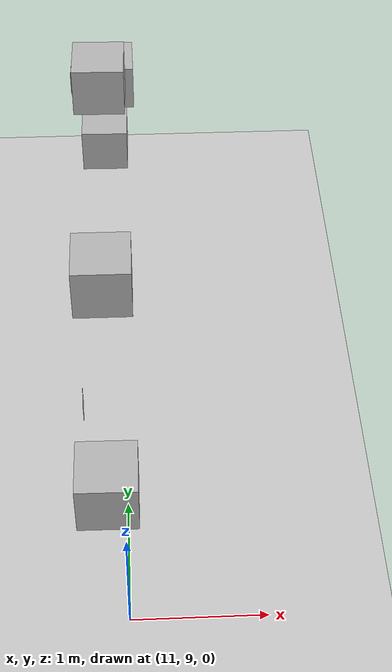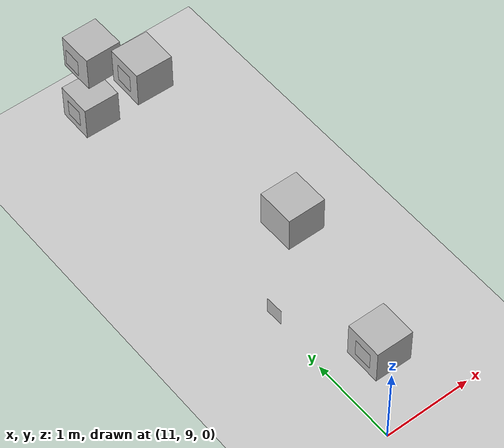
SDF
<sdf version="1.6">
 <world name="default">
  <model name="ground_plane">
   <static>1</static>
   <link name="link">
    <collision name="collision">
     <geometry><plane><normal>0 0 1</normal><size>300 300</size></plane></geometry>
     <surface>
      <contact><collide_bitmask>65535</collide_bitmask></contact>
      <friction><ode><mu>100</mu><mu2>50</mu2></ode></friction>
     </surface>
    </collision>
    <visual name="visual">
     <geometry><plane><normal>0 0 1</normal><size>100 100</size></plane></geometry>
     <material>
      <script><uri>file://media/materials/scripts/gazebo.material</uri><name>Gazebo/Grey</name></script>
     </material>
    </visual>
   </link>
  </model>
  <model name="CuboQR15">
   <link name="link">
    <pose>-0.025497 0.863791 0.912898 0 -0 0.011646</pose>
    <inertial>
     <mass>0.39</mass>
     <inertia><ixx>0.00058</ixx><ixy>0</ixy><ixz>0</ixz><iyy>0.00058</iyy><iyz>0</iyz><izz>0.00019</izz></inertia>
    </inertial>
    <visual name="visual">
     <geometry><box><size>0.4 0.4 0.4</size></box></geometry>
     <material>
      <script>
       <uri>model://Caja/materials/scripts</uri>
       <uri>model://Caja/materials/textures</uri>
       <name>Caja/Diffuse</name>
      </script>
      <shader type="pixel"/>
     </material>
    </visual>
    <collision name="collision">
     <geometry><box><size>0.4 0.4 0.4</size></box></geometry>
     <surface>
      <friction>
       <ode><mu>1</mu><mu2>1</mu2><fdir1>0 0 0</fdir1><slip1>0</slip1><slip2>0</slip2></ode>
       <torsional>
        <coefficient>1</coefficient>
        <patch_radius>0</patch_radius>
        <surface_radius>0</surface_radius>
        <use_patch_radius>1</use_patch_radius>
        <ode><slip>0</slip></ode>
       </torsional>
      </friction>
      <bounce><restitution_coefficient>0</restitution_coefficient><threshold>1e+06</threshold></bounce>
      <contact>
       <collide_without_contact>0</collide_without_contact>
       <collide_without_contact_bitmask>1</collide_without_contact_bitmask>
       <collide_bitmask>1</collide_bitmask>
       <ode>
        <soft_cfm>0</soft_cfm>
        <soft_erp>0.2</soft_erp>
        <kp>1e+13</kp>
        <kd>1</kd>
        <max_vel>0.01</max_vel>
        <min_depth>0</min_depth>
       </ode>
       <bullet>
        <split_impulse>1</split_impulse>
        <split_impulse_penetration_threshold>-0.01</split_impulse_penetration_threshold>
        <soft_cfm>0</soft_cfm>
        <soft_erp>0.2</soft_erp>
        <kp>1e+13</kp>
        <kd>1</kd>
       </bullet>
      </contact>
     </surface>
    </collision>
   </link>
   <static>0</static>
   <pose>10.8604 12.5829 -0.061965 -1e-06 -2e-06 -0.026227</pose>
  </model>
  <model name="CuboQR14">
   <link name="link">
    <pose>0.003906 0.820536 1.59475 0.003858 -0 0.037736</pose>
    <inertial>
     <mass>0.39</mass>
     <inertia><ixx>0.00058</ixx><ixy>0</ixy><ixz>0</ixz><iyy>0.00058</iyy><iyz>0</iyz><izz>0.00019</izz></inertia>
    </inertial>
    <visual name="visual">
     <geometry><box><size>0.4 0.4 0.4</size></box></geometry>
     <material>
      <script>
       <uri>model://Caja/materials/scripts</uri>
       <uri>model://Caja/materials/textures</uri>
       <name>Caja/Diffuse</name>
      </script>
      <shader type="pixel"/>
     </material>
    </visual>
    <collision name="collision">
     <geometry><box><size>0.4 0.4 0.4</size></box></geometry>
     <surface>
      <friction>
       <ode><mu>1</mu><mu2>1</mu2><fdir1>0 0 0</fdir1><slip1>0</slip1><slip2>0</slip2></ode>
       <torsional>
        <coefficient>1</coefficient>
        <patch_radius>0</patch_radius>
        <surface_radius>0</surface_radius>
        <use_patch_radius>1</use_patch_radius>
        <ode><slip>0</slip></ode>
       </torsional>
      </friction>
      <bounce><restitution_coefficient>0</restitution_coefficient><threshold>1e+06</threshold></bounce>
      <contact>
       <collide_without_contact>0</collide_without_contact>
       <collide_without_contact_bitmask>1</collide_without_contact_bitmask>
       <collide_bitmask>1</collide_bitmask>
       <ode>
        <soft_cfm>0</soft_cfm>
        <soft_erp>0.2</soft_erp>
        <kp>1e+13</kp>
        <kd>1</kd>
        <max_vel>0.01</max_vel>
        <min_depth>0</min_depth>
       </ode>
       <bullet>
        <split_impulse>1</split_impulse>
        <split_impulse_penetration_threshold>-0.01</split_impulse_penetration_threshold>
        <soft_cfm>0</soft_cfm>
        <soft_erp>0.2</soft_erp>
        <kp>1e+13</kp>
        <kd>1</kd>
       </bullet>
      </contact>
     </surface>
    </collision>
   </link>
   <static>0</static>
   <pose>10.8974 12.6254 -0.05319 -0.003856 -0.000141 -0.030736</pose>
  </model>
  <model name="CuboQR17">
   <link name="link">
    <pose>1.43982 2.03477 0.035682 1e-06 0.134249 0</pose>
    <inertial>
     <mass>0.39</mass>
     <inertia><ixx>0.00058</ixx><ixy>0</ixy><ixz>0</ixz><iyy>0.00058</iyy><iyz>0</iyz><izz>0.00019</izz></inertia>
    </inertial>
    <visual name="visual">
     <geometry><box><size>0.4 0.4 0.4</size></box></geometry>
     <material>
      <script>
       <uri>model://Caja/materials/scripts</uri>
       <uri>model://Caja/materials/textures</uri>
       <name>Caja/Diffuse</name>
      </script>
      <shader type="pixel"/>
     </material>
    </visual>
    <collision name="collision">
     <geometry><box><size>0.4 0.4 0.4</size></box></geometry>
     <surface>
      <friction>
       <ode><mu>1</mu><mu2>1</mu2><fdir1>0 0 0</fdir1><slip1>0</slip1><slip2>0</slip2></ode>
       <torsional>
        <coefficient>1</coefficient>
        <patch_radius>0</patch_radius>
        <surface_radius>0</surface_radius>
        <use_patch_radius>1</use_patch_radius>
        <ode><slip>0</slip></ode>
       </torsional>
      </friction>
      <bounce><restitution_coefficient>0</restitution_coefficient><threshold>1e+06</threshold></bounce>
      <contact>
       <collide_without_contact>0</collide_without_contact>
       <collide_without_contact_bitmask>1</collide_without_contact_bitmask>
       <collide_bitmask>1</collide_bitmask>
       <ode>
        <soft_cfm>0</soft_cfm>
        <soft_erp>0.2</soft_erp>
        <kp>1e+13</kp>
        <kd>1</kd>
        <max_vel>0.01</max_vel>
        <min_depth>0</min_depth>
       </ode>
       <bullet>
        <split_impulse>1</split_impulse>
        <split_impulse_penetration_threshold>-0.01</split_impulse_penetration_threshold>
        <soft_cfm>0</soft_cfm>
        <soft_erp>0.2</soft_erp>
        <kp>1e+13</kp>
        <kd>1</kd>
       </bullet>
      </contact>
     </surface>
    </collision>
   </link>
   <static>0</static>
   <pose>11.1141 13.9089 0.169288 1.5708 -1.9e-05 -1.72306</pose>
  </model>
  <model name="Plano15">
   <link name="link">
    <gravity>0</gravity>
    <pose>0.092941 -0.00902 1.95167 0 -0 0</pose>
    <inertial>
     <mass>1e-06</mass>
     <inertia><ixx>0.00058</ixx><ixy>0</ixy><ixz>0</ixz><iyy>0.00058</iyy><iyz>0</iyz><izz>0.00019</izz></inertia>
    </inertial>
    <visual name="visual">
     <geometry><box><size>0.2 1e-06 0.2</size></box></geometry>
     <material>
      <script>
       <uri>model://Plano15/materials/scripts</uri>
       <uri>model://Plano15/materials/textures</uri>
       <name>Plano15/Diffuse</name>
      </script>
      <shader type="pixel"/>
     </material>
     <cast_shadows>0</cast_shadows>
    </visual>
    <collision name="collision">
     <geometry><box><size>0.2 1e-06 0.2</size></box></geometry>
     <surface>
      <friction>
       <ode><mu>1</mu><mu2>1</mu2><fdir1>0 0 0</fdir1><slip1>0</slip1><slip2>0</slip2></ode>
       <torsional>
        <coefficient>1</coefficient>
        <patch_radius>0</patch_radius>
        <surface_radius>0</surface_radius>
        <use_patch_radius>1</use_patch_radius>
        <ode><slip>0</slip></ode>
       </torsional>
      </friction>
      <bounce><restitution_coefficient>0</restitution_coefficient><threshold>1e+06</threshold></bounce>
      <contact>
       <collide_without_contact>0</collide_without_contact>
       <collide_without_contact_bitmask>1</collide_without_contact_bitmask>
       <collide_bitmask>1</collide_bitmask>
       <ode>
        <soft_cfm>0</soft_cfm>
        <soft_erp>0.2</soft_erp>
        <kp>1e+13</kp>
        <kd>1</kd>
        <max_vel>0.01</max_vel>
        <min_depth>0</min_depth>
       </ode>
       <bullet>
        <split_impulse>1</split_impulse>
        <split_impulse_penetration_threshold>-0.01</split_impulse_penetration_threshold>
        <soft_cfm>0</soft_cfm>
        <soft_erp>0.2</soft_erp>
        <kp>1e+13</kp>
        <kd>1</kd>
       </bullet>
      </contact>
     </surface>
    </collision>
   </link>
   <static>0</static>
   <pose>10.6606 12.5838 0.25794 0 0 -1.60068</pose>
  </model>
  <model name="Plano17">
   <link name="link">
    <gravity>0</gravity>
    <pose>0.529394 0.033885 0.692928 -0 0.041367 0.025601</pose>
    <inertial>
     <mass>1e-06</mass>
     <inertia><ixx>0.00058</ixx><ixy>0</ixy><ixz>0</ixz><iyy>0.00058</iyy><iyz>0</iyz><izz>0.00019</izz></inertia>
    </inertial>
    <visual name="visual">
     <geometry><box><size>0.2 1e-06 0.2</size></box></geometry>
     <material>
      <script>
       <uri>model://Plano17/materials/scripts</uri>
       <uri>model://Plano17/materials/textures</uri>
       <name>Plano17/Diffuse</name>
      </script>
      <shader type="pixel"/>
     </material>
     <cast_shadows>0</cast_shadows>
    </visual>
    <collision name="collision">
     <geometry><box><size>0.2 1e-06 0.2</size></box></geometry>
     <surface>
      <friction>
       <ode><mu>1</mu><mu2>1</mu2><fdir1>0 0 0</fdir1><slip1>0</slip1><slip2>0</slip2></ode>
       <torsional>
        <coefficient>1</coefficient>
        <patch_radius>0</patch_radius>
        <surface_radius>0</surface_radius>
        <use_patch_radius>1</use_patch_radius>
        <ode><slip>0</slip></ode>
       </torsional>
      </friction>
      <bounce><restitution_coefficient>0</restitution_coefficient><threshold>1e+06</threshold></bounce>
      <contact>
       <collide_without_contact>0</collide_without_contact>
       <collide_without_contact_bitmask>1</collide_without_contact_bitmask>
       <collide_bitmask>1</collide_bitmask>
       <ode>
        <soft_cfm>0</soft_cfm>
        <soft_erp>0.2</soft_erp>
        <kp>1e+13</kp>
        <kd>1</kd>
        <max_vel>0.01</max_vel>
        <min_depth>0</min_depth>
       </ode>
       <bullet>
        <split_impulse>1</split_impulse>
        <split_impulse_penetration_threshold>-0.01</split_impulse_penetration_threshold>
        <soft_cfm>0</soft_cfm>
        <soft_erp>0.2</soft_erp>
        <kp>1e+13</kp>
        <kd>1</kd>
       </bullet>
      </contact>
     </surface>
    </collision>
   </link>
   <static>0</static>
   <pose>10.6508 13.9613 0.903512 0 0 -1.5876</pose>
  </model>
  <model name="Plano14">
   <link name="link">
    <gravity>0</gravity>
    <pose>-0.817096 -0.102693 -0.058439 0.003356 0.001825 0.044055</pose>
    <inertial>
     <mass>1e-06</mass>
     <inertia><ixx>0.00058</ixx><ixy>0</ixy><ixz>0</ixz><iyy>0.00058</iyy><iyz>0</iyz><izz>0.00019</izz></inertia>
    </inertial>
    <visual name="visual">
     <geometry><box><size>0.2 1e-06 0.2</size></box></geometry>
     <material>
      <script>
       <uri>model://Plano14/materials/scripts</uri>
       <uri>model://Plano14/materials/textures</uri>
       <name>Plano14/Diffuse</name>
      </script>
      <shader type="pixel"/>
     </material>
     <cast_shadows>0</cast_shadows>
    </visual>
    <collision name="collision">
     <geometry><box><size>0.2 1e-06 0.2</size></box></geometry>
     <surface>
      <friction>
       <ode><mu>1</mu><mu2>1</mu2><fdir1>0 0 0</fdir1><slip1>0</slip1><slip2>0</slip2></ode>
       <torsional>
        <coefficient>1</coefficient>
        <patch_radius>0</patch_radius>
        <surface_radius>0</surface_radius>
        <use_patch_radius>1</use_patch_radius>
        <ode><slip>0</slip></ode>
       </torsional>
      </friction>
      <bounce><restitution_coefficient>0</restitution_coefficient><threshold>1e+06</threshold></bounce>
      <contact>
       <collide_without_contact>0</collide_without_contact>
       <collide_without_contact_bitmask>1</collide_without_contact_bitmask>
       <collide_bitmask>1</collide_bitmask>
       <ode>
        <soft_cfm>0</soft_cfm>
        <soft_erp>0.2</soft_erp>
        <kp>1e+13</kp>
        <kd>1</kd>
        <max_vel>0.01</max_vel>
        <min_depth>0</min_depth>
       </ode>
       <bullet>
        <split_impulse>1</split_impulse>
        <split_impulse_penetration_threshold>-0.01</split_impulse_penetration_threshold>
        <soft_cfm>0</soft_cfm>
        <soft_erp>0.2</soft_erp>
        <kp>1e+13</kp>
        <kd>1</kd>
       </bullet>
      </contact>
     </surface>
    </collision>
   </link>
   <static>0</static>
   <pose>10.7078 12.6284 0.90675 0 0 -1.62851</pose>
  </model>
  <model name="CuboQR27">
   <link name="link">
    <pose>-0.033779 -0.485928 2.26127 0.003116 -0 0</pose>
    <inertial>
     <mass>0.39</mass>
     <inertia><ixx>0.00058</ixx><ixy>0</ixy><ixz>0</ixz><iyy>0.00058</iyy><iyz>0</iyz><izz>0.00019</izz></inertia>
    </inertial>
    <visual name="visual">
     <geometry><box><size>0.4 0.4 0.4</size></box></geometry>
     <material>
      <script>
       <uri>model://Caja/materials/scripts</uri>
       <uri>model://Caja/materials/textures</uri>
       <name>Caja/Diffuse</name>
      </script>
      <shader type="pixel"/>
     </material>
    </visual>
    <collision name="collision">
     <geometry><box><size>0.4 0.4 0.4</size></box></geometry>
     <surface>
      <friction>
       <ode><mu>1</mu><mu2>1</mu2><fdir1>0 0 0</fdir1><slip1>0</slip1><slip2>0</slip2></ode>
       <torsional>
        <coefficient>1</coefficient>
        <patch_radius>0</patch_radius>
        <surface_radius>0</surface_radius>
        <use_patch_radius>1</use_patch_radius>
        <ode><slip>0</slip></ode>
       </torsional>
      </friction>
      <bounce><restitution_coefficient>0</restitution_coefficient><threshold>1e+06</threshold></bounce>
      <contact>
       <collide_without_contact>0</collide_without_contact>
       <collide_without_contact_bitmask>1</collide_without_contact_bitmask>
       <collide_bitmask>1</collide_bitmask>
       <ode>
        <soft_cfm>0</soft_cfm>
        <soft_erp>0.2</soft_erp>
        <kp>1e+13</kp>
        <kd>1</kd>
        <max_vel>0.01</max_vel>
        <min_depth>0</min_depth>
       </ode>
       <bullet>
        <split_impulse>1</split_impulse>
        <split_impulse_penetration_threshold>-0.01</split_impulse_penetration_threshold>
        <soft_cfm>0</soft_cfm>
        <soft_erp>0.2</soft_erp>
        <kp>1e+13</kp>
        <kd>1</kd>
       </bullet>
      </contact>
     </surface>
    </collision>
   </link>
   <static>0</static>
   <pose>10.9213 10.7795 -0.058693 -0.003145 -1.2e-05 -0.002406</pose>
  </model>
  <model name="CuboQR12">
   <link name="link">
    <pose>-0.003583 -0.22358 1.64428 -0.706369 -0 0.028238</pose>
    <inertial>
     <mass>0.39</mass>
     <inertia><ixx>0.00058</ixx><ixy>0</ixy><ixz>0</ixz><iyy>0.00058</iyy><iyz>0</iyz><izz>0.00019</izz></inertia>
    </inertial>
    <visual name="visual">
     <geometry><box><size>0.4 0.4 0.4</size></box></geometry>
     <material>
      <script>
       <uri>model://Caja/materials/scripts</uri>
       <uri>model://Caja/materials/textures</uri>
       <name>Caja/Diffuse</name>
      </script>
      <shader type="pixel"/>
     </material>
    </visual>
    <collision name="collision">
     <geometry><box><size>0.4 0.4 0.4</size></box></geometry>
     <surface>
      <friction>
       <ode><mu>1</mu><mu2>1</mu2><fdir1>0 0 0</fdir1><slip1>0</slip1><slip2>0</slip2></ode>
       <torsional>
        <coefficient>1</coefficient>
        <patch_radius>0</patch_radius>
        <surface_radius>0</surface_radius>
        <use_patch_radius>1</use_patch_radius>
        <ode><slip>0</slip></ode>
       </torsional>
      </friction>
      <bounce><restitution_coefficient>0</restitution_coefficient><threshold>1e+06</threshold></bounce>
      <contact>
       <collide_without_contact>0</collide_without_contact>
       <collide_without_contact_bitmask>1</collide_without_contact_bitmask>
       <collide_bitmask>1</collide_bitmask>
       <ode>
        <soft_cfm>0</soft_cfm>
        <soft_erp>0.2</soft_erp>
        <kp>1e+13</kp>
        <kd>1</kd>
        <max_vel>0.01</max_vel>
        <min_depth>0</min_depth>
       </ode>
       <bullet>
        <split_impulse>1</split_impulse>
        <split_impulse_penetration_threshold>-0.01</split_impulse_penetration_threshold>
        <soft_cfm>0</soft_cfm>
        <soft_erp>0.2</soft_erp>
        <kp>1e+13</kp>
        <kd>1</kd>
       </bullet>
      </contact>
     </surface>
    </collision>
   </link>
   <static>0</static>
   <pose>10.9128 10.3142 0.432509 0.706154 0.018326 -0.028475</pose>
  </model>
  <model name="Plano29">
   <link name="link">
    <gravity>0</gravity>
    <pose>1.04341 -0.05608 -0.017058 0 -0 0</pose>
    <inertial>
     <mass>1e-06</mass>
     <inertia><ixx>0.00058</ixx><ixy>0</ixy><ixz>0</ixz><iyy>0.00058</iyy><iyz>0</iyz><izz>0.00019</izz></inertia>
    </inertial>
    <visual name="visual">
     <geometry><box><size>0.2 1e-06 0.2</size></box></geometry>
     <material>
      <script>
       <uri>model://Plano29/materials/scripts</uri>
       <uri>model://Plano29/materials/textures</uri>
       <name>Plano29/Diffuse</name>
      </script>
      <shader type="pixel"/>
     </material>
     <cast_shadows>0</cast_shadows>
    </visual>
    <collision name="collision">
     <geometry><box><size>0.2 1e-06 0.2</size></box></geometry>
     <surface>
      <friction>
       <ode><mu>1</mu><mu2>1</mu2><fdir1>0 0 0</fdir1><slip1>0</slip1><slip2>0</slip2></ode>
       <torsional>
        <coefficient>1</coefficient>
        <patch_radius>0</patch_radius>
        <surface_radius>0</surface_radius>
        <use_patch_radius>1</use_patch_radius>
        <ode><slip>0</slip></ode>
       </torsional>
      </friction>
      <bounce><restitution_coefficient>0</restitution_coefficient><threshold>1e+06</threshold></bounce>
      <contact>
       <collide_without_contact>0</collide_without_contact>
       <collide_without_contact_bitmask>1</collide_without_contact_bitmask>
       <collide_bitmask>1</collide_bitmask>
       <ode>
        <soft_cfm>0</soft_cfm>
        <soft_erp>0.2</soft_erp>
        <kp>1e+13</kp>
        <kd>1</kd>
        <max_vel>0.01</max_vel>
        <min_depth>0</min_depth>
       </ode>
       <bullet>
        <split_impulse>1</split_impulse>
        <split_impulse_penetration_threshold>-0.01</split_impulse_penetration_threshold>
        <soft_cfm>0</soft_cfm>
        <soft_erp>0.2</soft_erp>
        <kp>1e+13</kp>
        <kd>1</kd>
       </bullet>
      </contact>
     </surface>
    </collision>
   </link>
   <static>0</static>
   <pose>10.7522 10.1107 1.5598 0 0 -1.57894</pose>
  </model>
  <model name="Plano27">
   <link name="link">
    <gravity>0</gravity>
    <pose>0.469171 -0.023188 -0.057385 0 -0 0.032924</pose>
    <inertial>
     <mass>1e-06</mass>
     <inertia><ixx>0.00058</ixx><ixy>0</ixy><ixz>0</ixz><iyy>0.00058</iyy><iyz>0</iyz><izz>0.00019</izz></inertia>
    </inertial>
    <visual name="visual">
     <geometry><box><size>0.2 1e-06 0.2</size></box></geometry>
     <material>
      <script>
       <uri>model://Plano27/materials/scripts</uri>
       <uri>model://Plano27/materials/textures</uri>
       <name>Plano27/Diffuse</name>
      </script>
      <shader type="pixel"/>
     </material>
     <cast_shadows>0</cast_shadows>
    </visual>
    <collision name="collision">
     <geometry><box><size>0.2 1e-06 0.2</size></box></geometry>
     <surface>
      <friction>
       <ode><mu>1</mu><mu2>1</mu2><fdir1>0 0 0</fdir1><slip1>0</slip1><slip2>0</slip2></ode>
       <torsional>
        <coefficient>1</coefficient>
        <patch_radius>0</patch_radius>
        <surface_radius>0</surface_radius>
        <use_patch_radius>1</use_patch_radius>
        <ode><slip>0</slip></ode>
       </torsional>
      </friction>
      <bounce><restitution_coefficient>0</restitution_coefficient><threshold>1e+06</threshold></bounce>
      <contact>
       <collide_without_contact>0</collide_without_contact>
       <collide_without_contact_bitmask>1</collide_without_contact_bitmask>
       <collide_bitmask>1</collide_bitmask>
       <ode>
        <soft_cfm>0</soft_cfm>
        <soft_erp>0.2</soft_erp>
        <kp>1e+13</kp>
        <kd>1</kd>
        <max_vel>0.01</max_vel>
        <min_depth>0</min_depth>
       </ode>
       <bullet>
        <split_impulse>1</split_impulse>
        <split_impulse_penetration_threshold>-0.01</split_impulse_penetration_threshold>
        <soft_cfm>0</soft_cfm>
        <soft_erp>0.2</soft_erp>
        <kp>1e+13</kp>
        <kd>1</kd>
       </bullet>
      </contact>
     </surface>
    </collision>
   </link>
   <static>0</static>
   <pose>10.7156 10.7789 0.90002 0 0 -1.57306</pose>
  </model>
 </world>
</sdf>
